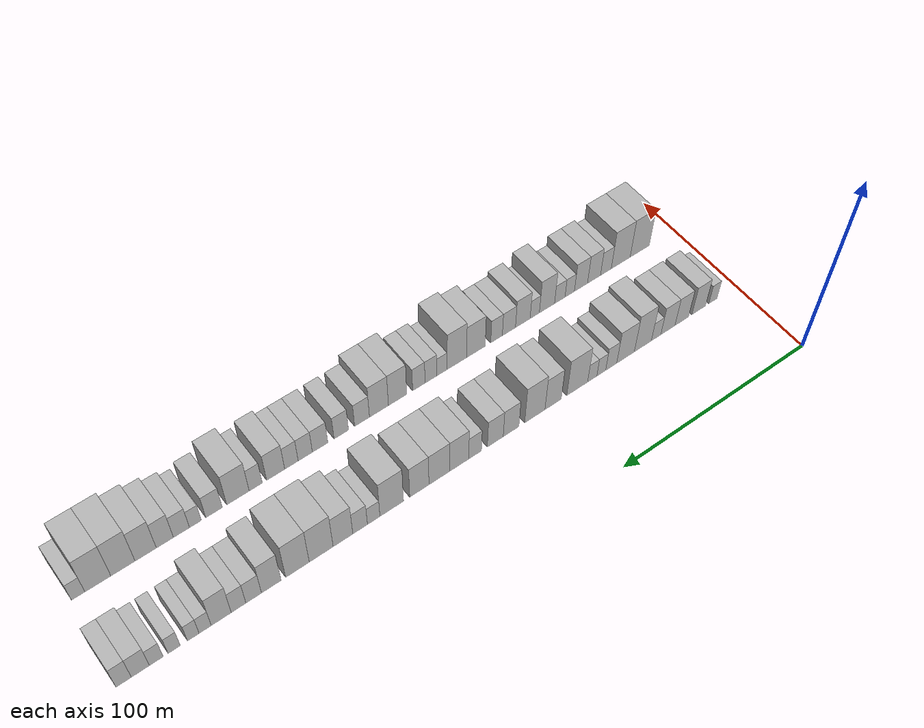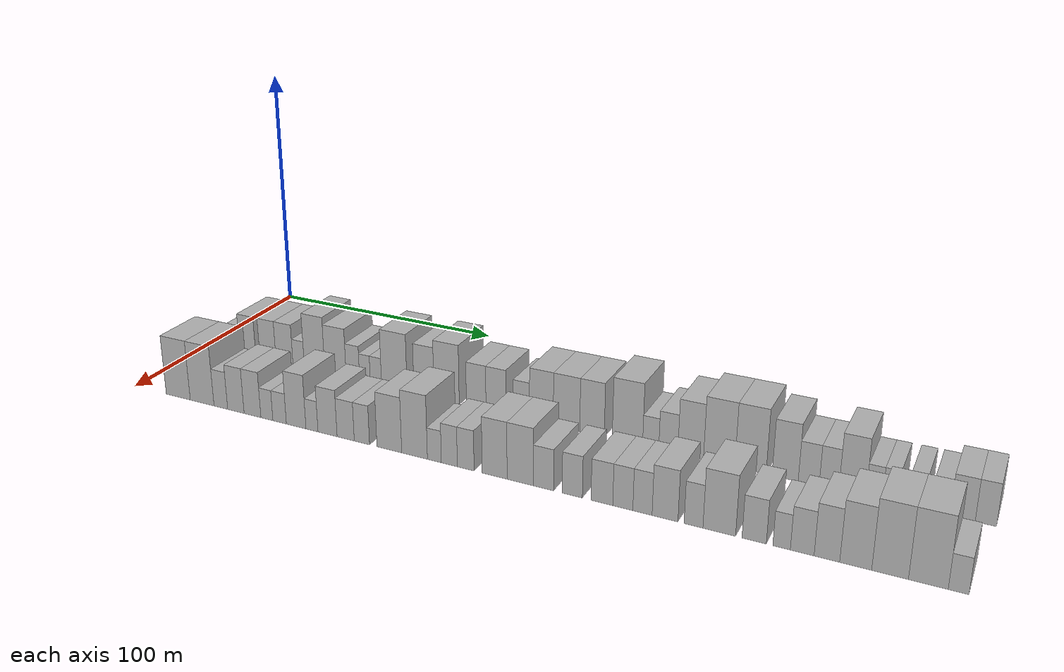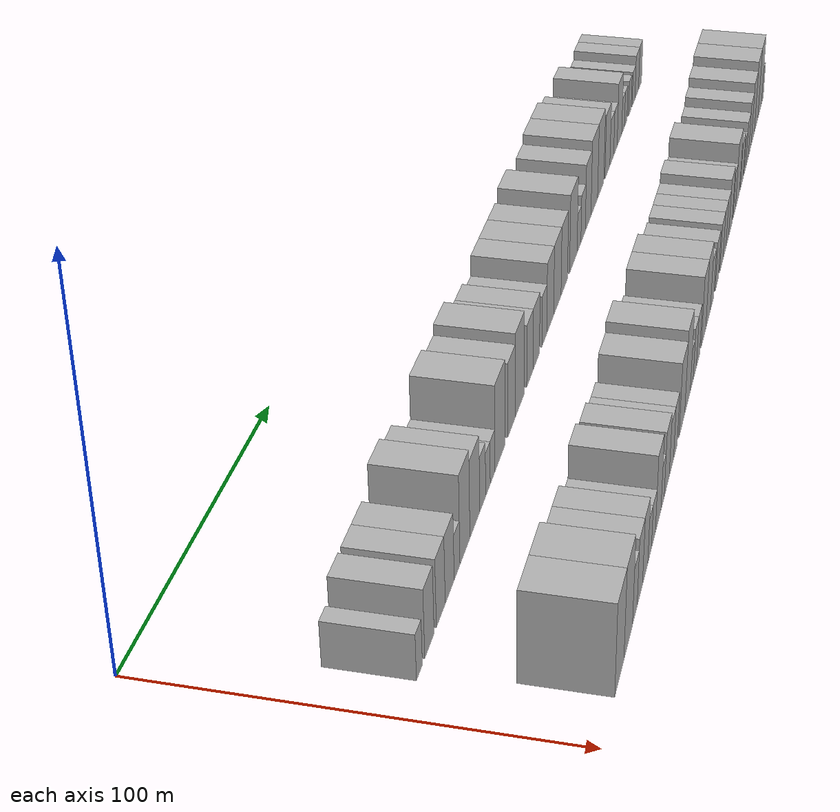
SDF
<sdf version="1.6">
 <world name="default">
  <model name="building_35">
   <static>1</static>
   <pose>50.0000 13.9240 0 0.000000 0.000000 0.000000</pose>
   <link name="link">
    <pose>0 0 6.00 0 0 0</pose>
    <collision name="collision"><geometry><box><size>20.0000 4.8613 12.0000</size></box></geometry></collision>
    <visual name="visual">
     <cast_shadows>0</cast_shadows>
     <geometry><box><size>20.0000 4.8613 12.0000</size></box></geometry>
     <material>
      <script>
       <uri>model://HANNAS_wall/materials/scripts</uri>
       <uri>model://HANNAS_wall/materials/textures</uri>
       <name>vrc/HANNAS_wall</name>
      </script>
     </material>
    </visual>
   </link>
  </model>
  <model name="building_36">
   <static>1</static>
   <pose>50.0000 22.3026 0 0.000000 0.000000 0.000000</pose>
   <link name="link">
    <pose>0 0 9.00 0 0 0</pose>
    <collision name="collision"><geometry><box><size>20.0000 7.8958 18.0000</size></box></geometry></collision>
    <visual name="visual">
     <cast_shadows>0</cast_shadows>
     <geometry><box><size>20.0000 7.8958 18.0000</size></box></geometry>
     <material>
      <script>
       <uri>model://HANNAS_wall/materials/scripts</uri>
       <uri>model://HANNAS_wall/materials/textures</uri>
       <name>vrc/HANNAS_wall</name>
      </script>
     </material>
    </visual>
   </link>
  </model>
  <model name="building_37">
   <static>1</static>
   <pose>50.0000 32.1609 0 0.000000 0.000000 0.000000</pose>
   <link name="link">
    <pose>0 0 9.00 0 0 0</pose>
    <collision name="collision"><geometry><box><size>20.0000 7.8208 18.0000</size></box></geometry></collision>
    <visual name="visual">
     <cast_shadows>0</cast_shadows>
     <geometry><box><size>20.0000 7.8208 18.0000</size></box></geometry>
     <material>
      <script>
       <uri>model://HANNAS_wall/materials/scripts</uri>
       <uri>model://HANNAS_wall/materials/textures</uri>
       <name>vrc/HANNAS_wall</name>
      </script>
     </material>
    </visual>
   </link>
  </model>
  <model name="building_38">
   <static>1</static>
   <pose>50.0000 40.1350 0 0.000000 0.000000 0.000000</pose>
   <link name="link">
    <pose>0 0 9.00 0 0 0</pose>
    <collision name="collision"><geometry><box><size>20.0000 8.1274 18.0000</size></box></geometry></collision>
    <visual name="visual">
     <cast_shadows>0</cast_shadows>
     <geometry><box><size>20.0000 8.1274 18.0000</size></box></geometry>
     <material>
      <script>
       <uri>model://HANNAS_wall/materials/scripts</uri>
       <uri>model://HANNAS_wall/materials/textures</uri>
       <name>vrc/HANNAS_wall</name>
      </script>
     </material>
    </visual>
   </link>
  </model>
  <model name="building_39">
   <static>1</static>
   <pose>50.0000 46.8901 0 0.000000 0.000000 0.000000</pose>
   <link name="link">
    <pose>0 0 6.00 0 0 0</pose>
    <collision name="collision"><geometry><box><size>20.0000 5.3828 12.0000</size></box></geometry></collision>
    <visual name="visual">
     <cast_shadows>0</cast_shadows>
     <geometry><box><size>20.0000 5.3828 12.0000</size></box></geometry>
     <material>
      <script>
       <uri>model://HANNAS_wall/materials/scripts</uri>
       <uri>model://HANNAS_wall/materials/textures</uri>
       <name>vrc/HANNAS_wall</name>
      </script>
     </material>
    </visual>
   </link>
  </model>
  <model name="building_40">
   <static>1</static>
   <pose>50.0000 54.3845 0 0.000000 0.000000 0.000000</pose>
   <link name="link">
    <pose>0 0 12.00 0 0 0</pose>
    <collision name="collision"><geometry><box><size>20.0000 9.6059 24.0000</size></box></geometry></collision>
    <visual name="visual">
     <cast_shadows>0</cast_shadows>
     <geometry><box><size>20.0000 9.6059 24.0000</size></box></geometry>
     <material>
      <script>
       <uri>model://HANNAS_wall/materials/scripts</uri>
       <uri>model://HANNAS_wall/materials/textures</uri>
       <name>vrc/HANNAS_wall</name>
      </script>
     </material>
    </visual>
   </link>
  </model>
  <model name="building_41">
   <static>1</static>
   <pose>50.0000 64.0913 0 0.000000 0.000000 0.000000</pose>
   <link name="link">
    <pose>0 0 10.50 0 0 0</pose>
    <collision name="collision"><geometry><box><size>20.0000 9.8076 21.0000</size></box></geometry></collision>
    <visual name="visual">
     <cast_shadows>0</cast_shadows>
     <geometry><box><size>20.0000 9.8076 21.0000</size></box></geometry>
     <material>
      <script>
       <uri>model://HANNAS_wall/materials/scripts</uri>
       <uri>model://HANNAS_wall/materials/textures</uri>
       <name>vrc/HANNAS_wall</name>
      </script>
     </material>
    </visual>
   </link>
  </model>
  <model name="building_42">
   <static>1</static>
   <pose>50.0000 72.0387 0 0.000000 0.000000 0.000000</pose>
   <link name="link">
    <pose>0 0 7.50 0 0 0</pose>
    <collision name="collision"><geometry><box><size>20.0000 6.0873 15.0000</size></box></geometry></collision>
    <visual name="visual">
     <cast_shadows>0</cast_shadows>
     <geometry><box><size>20.0000 6.0873 15.0000</size></box></geometry>
     <material>
      <script>
       <uri>model://HANNAS_wall/materials/scripts</uri>
       <uri>model://HANNAS_wall/materials/textures</uri>
       <name>vrc/HANNAS_wall</name>
      </script>
     </material>
    </visual>
   </link>
  </model>
  <model name="building_43">
   <static>1</static>
   <pose>50.0000 77.4882 0 0.000000 0.000000 0.000000</pose>
   <link name="link">
    <pose>0 0 6.00 0 0 0</pose>
    <collision name="collision"><geometry><box><size>20.0000 4.8118 12.0000</size></box></geometry></collision>
    <visual name="visual">
     <cast_shadows>0</cast_shadows>
     <geometry><box><size>20.0000 4.8118 12.0000</size></box></geometry>
     <material>
      <script>
       <uri>model://HANNAS_wall/materials/scripts</uri>
       <uri>model://HANNAS_wall/materials/textures</uri>
       <name>vrc/HANNAS_wall</name>
      </script>
     </material>
    </visual>
   </link>
  </model>
  <model name="building_44">
   <static>1</static>
   <pose>50.0000 82.4046 0 0.000000 0.000000 0.000000</pose>
   <link name="link">
    <pose>0 0 6.00 0 0 0</pose>
    <collision name="collision"><geometry><box><size>20.0000 5.0209 12.0000</size></box></geometry></collision>
    <visual name="visual">
     <cast_shadows>0</cast_shadows>
     <geometry><box><size>20.0000 5.0209 12.0000</size></box></geometry>
     <material>
      <script>
       <uri>model://HANNAS_wall/materials/scripts</uri>
       <uri>model://HANNAS_wall/materials/textures</uri>
       <name>vrc/HANNAS_wall</name>
      </script>
     </material>
    </visual>
   </link>
  </model>
  <model name="building_45">
   <static>1</static>
   <pose>50.0000 90.5324 0 0.000000 0.000000 0.000000</pose>
   <link name="link">
    <pose>0 0 12.00 0 0 0</pose>
    <collision name="collision"><geometry><box><size>20.0000 11.2347 24.0000</size></box></geometry></collision>
    <visual name="visual">
     <cast_shadows>0</cast_shadows>
     <geometry><box><size>20.0000 11.2347 24.0000</size></box></geometry>
     <material>
      <script>
       <uri>model://HANNAS_wall/materials/scripts</uri>
       <uri>model://HANNAS_wall/materials/textures</uri>
       <name>vrc/HANNAS_wall</name>
      </script>
     </material>
    </visual>
   </link>
  </model>
  <model name="building_46">
   <static>1</static>
   <pose>50.0000 103.4537 0 0.000000 0.000000 0.000000</pose>
   <link name="link">
    <pose>0 0 10.50 0 0 0</pose>
    <collision name="collision"><geometry><box><size>20.0000 8.6078 21.0000</size></box></geometry></collision>
    <visual name="visual">
     <cast_shadows>0</cast_shadows>
     <geometry><box><size>20.0000 8.6078 21.0000</size></box></geometry>
     <material>
      <script>
       <uri>model://HANNAS_wall/materials/scripts</uri>
       <uri>model://HANNAS_wall/materials/textures</uri>
       <name>vrc/HANNAS_wall</name>
      </script>
     </material>
    </visual>
   </link>
  </model>
  <model name="building_47">
   <static>1</static>
   <pose>50.0000 113.0710 0 0.000000 0.000000 0.000000</pose>
   <link name="link">
    <pose>0 0 12.00 0 0 0</pose>
    <collision name="collision"><geometry><box><size>20.0000 10.6269 24.0000</size></box></geometry></collision>
    <visual name="visual">
     <cast_shadows>0</cast_shadows>
     <geometry><box><size>20.0000 10.6269 24.0000</size></box></geometry>
     <material>
      <script>
       <uri>model://HANNAS_wall/materials/scripts</uri>
       <uri>model://HANNAS_wall/materials/textures</uri>
       <name>vrc/HANNAS_wall</name>
      </script>
     </material>
    </visual>
   </link>
  </model>
  <model name="building_48">
   <static>1</static>
   <pose>50.0000 125.4324 0 0.000000 0.000000 0.000000</pose>
   <link name="link">
    <pose>0 0 9.00 0 0 0</pose>
    <collision name="collision"><geometry><box><size>20.0000 8.0960 18.0000</size></box></geometry></collision>
    <visual name="visual">
     <cast_shadows>0</cast_shadows>
     <geometry><box><size>20.0000 8.0960 18.0000</size></box></geometry>
     <material>
      <script>
       <uri>model://HANNAS_wall/materials/scripts</uri>
       <uri>model://HANNAS_wall/materials/textures</uri>
       <name>vrc/HANNAS_wall</name>
      </script>
     </material>
    </visual>
   </link>
  </model>
  <model name="building_49">
   <static>1</static>
   <pose>50.0000 133.5288 0 0.000000 0.000000 0.000000</pose>
   <link name="link">
    <pose>0 0 9.00 0 0 0</pose>
    <collision name="collision"><geometry><box><size>20.0000 8.0967 18.0000</size></box></geometry></collision>
    <visual name="visual">
     <cast_shadows>0</cast_shadows>
     <geometry><box><size>20.0000 8.0967 18.0000</size></box></geometry>
     <material>
      <script>
       <uri>model://HANNAS_wall/materials/scripts</uri>
       <uri>model://HANNAS_wall/materials/textures</uri>
       <name>vrc/HANNAS_wall</name>
      </script>
     </material>
    </visual>
   </link>
  </model>
  <model name="building_50">
   <static>1</static>
   <pose>50.0000 143.8036 0 0.000000 0.000000 0.000000</pose>
   <link name="link">
    <pose>0 0 7.50 0 0 0</pose>
    <collision name="collision"><geometry><box><size>20.0000 6.4529 15.0000</size></box></geometry></collision>
    <visual name="visual">
     <cast_shadows>0</cast_shadows>
     <geometry><box><size>20.0000 6.4529 15.0000</size></box></geometry>
     <material>
      <script>
       <uri>model://HANNAS_wall/materials/scripts</uri>
       <uri>model://HANNAS_wall/materials/textures</uri>
       <name>vrc/HANNAS_wall</name>
      </script>
     </material>
    </visual>
   </link>
  </model>
  <model name="building_51">
   <static>1</static>
   <pose>50.0000 151.7196 0 0.000000 0.000000 0.000000</pose>
   <link name="link">
    <pose>0 0 10.50 0 0 0</pose>
    <collision name="collision"><geometry><box><size>20.0000 9.3789 21.0000</size></box></geometry></collision>
    <visual name="visual">
     <cast_shadows>0</cast_shadows>
     <geometry><box><size>20.0000 9.3789 21.0000</size></box></geometry>
     <material>
      <script>
       <uri>model://HANNAS_wall/materials/scripts</uri>
       <uri>model://HANNAS_wall/materials/textures</uri>
       <name>vrc/HANNAS_wall</name>
      </script>
     </material>
    </visual>
   </link>
  </model>
  <model name="building_52">
   <static>1</static>
   <pose>50.0000 161.5424 0 0.000000 0.000000 0.000000</pose>
   <link name="link">
    <pose>0 0 10.50 0 0 0</pose>
    <collision name="collision"><geometry><box><size>20.0000 10.2667 21.0000</size></box></geometry></collision>
    <visual name="visual">
     <cast_shadows>0</cast_shadows>
     <geometry><box><size>20.0000 10.2667 21.0000</size></box></geometry>
     <material>
      <script>
       <uri>model://HANNAS_wall/materials/scripts</uri>
       <uri>model://HANNAS_wall/materials/textures</uri>
       <name>vrc/HANNAS_wall</name>
      </script>
     </material>
    </visual>
   </link>
  </model>
  <model name="building_53">
   <static>1</static>
   <pose>50.0000 171.3436 0 0.000000 0.000000 0.000000</pose>
   <link name="link">
    <pose>0 0 10.50 0 0 0</pose>
    <collision name="collision"><geometry><box><size>20.0000 9.3358 21.0000</size></box></geometry></collision>
    <visual name="visual">
     <cast_shadows>0</cast_shadows>
     <geometry><box><size>20.0000 9.3358 21.0000</size></box></geometry>
     <material>
      <script>
       <uri>model://HANNAS_wall/materials/scripts</uri>
       <uri>model://HANNAS_wall/materials/textures</uri>
       <name>vrc/HANNAS_wall</name>
      </script>
     </material>
    </visual>
   </link>
  </model>
  <model name="building_54">
   <static>1</static>
   <pose>50.0000 184.6445 0 0.000000 0.000000 0.000000</pose>
   <link name="link">
    <pose>0 0 12.00 0 0 0</pose>
    <collision name="collision"><geometry><box><size>20.0000 11.2659 24.0000</size></box></geometry></collision>
    <visual name="visual">
     <cast_shadows>0</cast_shadows>
     <geometry><box><size>20.0000 11.2659 24.0000</size></box></geometry>
     <material>
      <script>
       <uri>model://HANNAS_wall/materials/scripts</uri>
       <uri>model://HANNAS_wall/materials/textures</uri>
       <name>vrc/HANNAS_wall</name>
      </script>
     </material>
    </visual>
   </link>
  </model>
  <model name="building_55">
   <static>1</static>
   <pose>50.0000 193.2278 0 0.000000 0.000000 0.000000</pose>
   <link name="link">
    <pose>0 0 6.00 0 0 0</pose>
    <collision name="collision"><geometry><box><size>20.0000 5.9009 12.0000</size></box></geometry></collision>
    <visual name="visual">
     <cast_shadows>0</cast_shadows>
     <geometry><box><size>20.0000 5.9009 12.0000</size></box></geometry>
     <material>
      <script>
       <uri>model://HANNAS_wall/materials/scripts</uri>
       <uri>model://HANNAS_wall/materials/textures</uri>
       <name>vrc/HANNAS_wall</name>
      </script>
     </material>
    </visual>
   </link>
  </model>
  <model name="building_56">
   <static>1</static>
   <pose>50.0000 199.6031 0 0.000000 0.000000 0.000000</pose>
   <link name="link">
    <pose>0 0 7.50 0 0 0</pose>
    <collision name="collision"><geometry><box><size>20.0000 6.8497 15.0000</size></box></geometry></collision>
    <visual name="visual">
     <cast_shadows>0</cast_shadows>
     <geometry><box><size>20.0000 6.8497 15.0000</size></box></geometry>
     <material>
      <script>
       <uri>model://HANNAS_wall/materials/scripts</uri>
       <uri>model://HANNAS_wall/materials/textures</uri>
       <name>vrc/HANNAS_wall</name>
      </script>
     </material>
    </visual>
   </link>
  </model>
  <model name="building_57">
   <static>1</static>
   <pose>50.0000 207.5885 0 0.000000 0.000000 0.000000</pose>
   <link name="link">
    <pose>0 0 10.50 0 0 0</pose>
    <collision name="collision"><geometry><box><size>20.0000 9.1211 21.0000</size></box></geometry></collision>
    <visual name="visual">
     <cast_shadows>0</cast_shadows>
     <geometry><box><size>20.0000 9.1211 21.0000</size></box></geometry>
     <material>
      <script>
       <uri>model://HANNAS_wall/materials/scripts</uri>
       <uri>model://HANNAS_wall/materials/textures</uri>
       <name>vrc/HANNAS_wall</name>
      </script>
     </material>
    </visual>
   </link>
  </model>
  <model name="building_58">
   <static>1</static>
   <pose>50.0000 217.6149 0 0.000000 0.000000 0.000000</pose>
   <link name="link">
    <pose>0 0 12.00 0 0 0</pose>
    <collision name="collision"><geometry><box><size>20.0000 10.9317 24.0000</size></box></geometry></collision>
    <visual name="visual">
     <cast_shadows>0</cast_shadows>
     <geometry><box><size>20.0000 10.9317 24.0000</size></box></geometry>
     <material>
      <script>
       <uri>model://HANNAS_wall/materials/scripts</uri>
       <uri>model://HANNAS_wall/materials/textures</uri>
       <name>vrc/HANNAS_wall</name>
      </script>
     </material>
    </visual>
   </link>
  </model>
  <model name="building_59">
   <static>1</static>
   <pose>50.0000 228.4080 0 0.000000 0.000000 0.000000</pose>
   <link name="link">
    <pose>0 0 12.00 0 0 0</pose>
    <collision name="collision"><geometry><box><size>20.0000 10.6546 24.0000</size></box></geometry></collision>
    <visual name="visual">
     <cast_shadows>0</cast_shadows>
     <geometry><box><size>20.0000 10.6546 24.0000</size></box></geometry>
     <material>
      <script>
       <uri>model://HANNAS_wall/materials/scripts</uri>
       <uri>model://HANNAS_wall/materials/textures</uri>
       <name>vrc/HANNAS_wall</name>
      </script>
     </material>
    </visual>
   </link>
  </model>
  <model name="building_60">
   <static>1</static>
   <pose>50.0000 240.0956 0 0.000000 0.000000 0.000000</pose>
   <link name="link">
    <pose>0 0 10.50 0 0 0</pose>
    <collision name="collision"><geometry><box><size>20.0000 8.7206 21.0000</size></box></geometry></collision>
    <visual name="visual">
     <cast_shadows>0</cast_shadows>
     <geometry><box><size>20.0000 8.7206 21.0000</size></box></geometry>
     <material>
      <script>
       <uri>model://HANNAS_wall/materials/scripts</uri>
       <uri>model://HANNAS_wall/materials/textures</uri>
       <name>vrc/HANNAS_wall</name>
      </script>
     </material>
    </visual>
   </link>
  </model>
  <model name="building_61">
   <static>1</static>
   <pose>50.0000 247.8825 0 0.000000 0.000000 0.000000</pose>
   <link name="link">
    <pose>0 0 7.50 0 0 0</pose>
    <collision name="collision"><geometry><box><size>20.0000 6.8532 15.0000</size></box></geometry></collision>
    <visual name="visual">
     <cast_shadows>0</cast_shadows>
     <geometry><box><size>20.0000 6.8532 15.0000</size></box></geometry>
     <material>
      <script>
       <uri>model://HANNAS_wall/materials/scripts</uri>
       <uri>model://HANNAS_wall/materials/textures</uri>
       <name>vrc/HANNAS_wall</name>
      </script>
     </material>
    </visual>
   </link>
  </model>
  <model name="building_62">
   <static>1</static>
   <pose>50.0000 254.4864 0 0.000000 0.000000 0.000000</pose>
   <link name="link">
    <pose>0 0 7.50 0 0 0</pose>
    <collision name="collision"><geometry><box><size>20.0000 6.3546 15.0000</size></box></geometry></collision>
    <visual name="visual">
     <cast_shadows>0</cast_shadows>
     <geometry><box><size>20.0000 6.3546 15.0000</size></box></geometry>
     <material>
      <script>
       <uri>model://HANNAS_wall/materials/scripts</uri>
       <uri>model://HANNAS_wall/materials/textures</uri>
       <name>vrc/HANNAS_wall</name>
      </script>
     </material>
    </visual>
   </link>
  </model>
  <model name="building_63">
   <static>1</static>
   <pose>50.0000 261.9787 0 0.000000 0.000000 0.000000</pose>
   <link name="link">
    <pose>0 0 10.50 0 0 0</pose>
    <collision name="collision"><geometry><box><size>20.0000 8.6299 21.0000</size></box></geometry></collision>
    <visual name="visual">
     <cast_shadows>0</cast_shadows>
     <geometry><box><size>20.0000 8.6299 21.0000</size></box></geometry>
     <material>
      <script>
       <uri>model://HANNAS_wall/materials/scripts</uri>
       <uri>model://HANNAS_wall/materials/textures</uri>
       <name>vrc/HANNAS_wall</name>
      </script>
     </material>
    </visual>
   </link>
  </model>
  <model name="building_64">
   <static>1</static>
   <pose>50.0000 268.8874 0 0.000000 0.000000 0.000000</pose>
   <link name="link">
    <pose>0 0 6.00 0 0 0</pose>
    <collision name="collision"><geometry><box><size>20.0000 5.1875 12.0000</size></box></geometry></collision>
    <visual name="visual">
     <cast_shadows>0</cast_shadows>
     <geometry><box><size>20.0000 5.1875 12.0000</size></box></geometry>
     <material>
      <script>
       <uri>model://HANNAS_wall/materials/scripts</uri>
       <uri>model://HANNAS_wall/materials/textures</uri>
       <name>vrc/HANNAS_wall</name>
      </script>
     </material>
    </visual>
   </link>
  </model>
  <model name="building_65">
   <static>1</static>
   <pose>50.0000 273.9384 0 0.000000 0.000000 0.000000</pose>
   <link name="link">
    <pose>0 0 6.00 0 0 0</pose>
    <collision name="collision"><geometry><box><size>20.0000 4.9145 12.0000</size></box></geometry></collision>
    <visual name="visual">
     <cast_shadows>0</cast_shadows>
     <geometry><box><size>20.0000 4.9145 12.0000</size></box></geometry>
     <material>
      <script>
       <uri>model://HANNAS_wall/materials/scripts</uri>
       <uri>model://HANNAS_wall/materials/textures</uri>
       <name>vrc/HANNAS_wall</name>
      </script>
     </material>
    </visual>
   </link>
  </model>
  <model name="building_66">
   <static>1</static>
   <pose>50.0000 281.9680 0 0.000000 0.000000 0.000000</pose>
   <link name="link">
    <pose>0 0 6.00 0 0 0</pose>
    <collision name="collision"><geometry><box><size>20.0000 5.1447 12.0000</size></box></geometry></collision>
    <visual name="visual">
     <cast_shadows>0</cast_shadows>
     <geometry><box><size>20.0000 5.1447 12.0000</size></box></geometry>
     <material>
      <script>
       <uri>model://HANNAS_wall/materials/scripts</uri>
       <uri>model://HANNAS_wall/materials/textures</uri>
       <name>vrc/HANNAS_wall</name>
      </script>
     </material>
    </visual>
   </link>
  </model>
  <model name="building_67">
   <static>1</static>
   <pose>50.0000 289.4012 0 0.000000 0.000000 0.000000</pose>
   <link name="link">
    <pose>0 0 6.00 0 0 0</pose>
    <collision name="collision"><geometry><box><size>20.0000 5.7215 12.0000</size></box></geometry></collision>
    <visual name="visual">
     <cast_shadows>0</cast_shadows>
     <geometry><box><size>20.0000 5.7215 12.0000</size></box></geometry>
     <material>
      <script>
       <uri>model://HANNAS_wall/materials/scripts</uri>
       <uri>model://HANNAS_wall/materials/textures</uri>
       <name>vrc/HANNAS_wall</name>
      </script>
     </material>
    </visual>
   </link>
  </model>
  <model name="building_68">
   <static>1</static>
   <pose>50.0000 295.9779 0 0.000000 0.000000 0.000000</pose>
   <link name="link">
    <pose>0 0 7.50 0 0 0</pose>
    <collision name="collision"><geometry><box><size>20.0000 7.4320 15.0000</size></box></geometry></collision>
    <visual name="visual">
     <cast_shadows>0</cast_shadows>
     <geometry><box><size>20.0000 7.4320 15.0000</size></box></geometry>
     <material>
      <script>
       <uri>model://HANNAS_wall/materials/scripts</uri>
       <uri>model://HANNAS_wall/materials/textures</uri>
       <name>vrc/HANNAS_wall</name>
      </script>
     </material>
    </visual>
   </link>
  </model>
  <model name="building_69">
   <static>1</static>
   <pose>50.0000 302.8215 0 0.000000 0.000000 0.000000</pose>
   <link name="link">
    <pose>0 0 7.50 0 0 0</pose>
    <collision name="collision"><geometry><box><size>20.0000 6.2551 15.0000</size></box></geometry></collision>
    <visual name="visual">
     <cast_shadows>0</cast_shadows>
     <geometry><box><size>20.0000 6.2551 15.0000</size></box></geometry>
     <material>
      <script>
       <uri>model://HANNAS_wall/materials/scripts</uri>
       <uri>model://HANNAS_wall/materials/textures</uri>
       <name>vrc/HANNAS_wall</name>
      </script>
     </material>
    </visual>
   </link>
  </model>
  <model name="building_106">
   <static>1</static>
   <pose>90.0000 20.6751 0 0.000000 0.000000 0.000000</pose>
   <link name="link">
    <pose>0 0 12.00 0 0 0</pose>
    <collision name="collision"><geometry><box><size>20.0000 11.3419 24.0000</size></box></geometry></collision>
    <visual name="visual">
     <cast_shadows>0</cast_shadows>
     <geometry><box><size>20.0000 11.3419 24.0000</size></box></geometry>
     <material>
      <script>
       <uri>model://HANNAS_wall/materials/scripts</uri>
       <uri>model://HANNAS_wall/materials/textures</uri>
       <name>vrc/HANNAS_wall</name>
      </script>
     </material>
    </visual>
   </link>
  </model>
  <model name="building_107">
   <static>1</static>
   <pose>90.0000 31.8686 0 0.000000 0.000000 0.000000</pose>
   <link name="link">
    <pose>0 0 12.00 0 0 0</pose>
    <collision name="collision"><geometry><box><size>20.0000 11.0450 24.0000</size></box></geometry></collision>
    <visual name="visual">
     <cast_shadows>0</cast_shadows>
     <geometry><box><size>20.0000 11.0450 24.0000</size></box></geometry>
     <material>
      <script>
       <uri>model://HANNAS_wall/materials/scripts</uri>
       <uri>model://HANNAS_wall/materials/textures</uri>
       <name>vrc/HANNAS_wall</name>
      </script>
     </material>
    </visual>
   </link>
  </model>
  <model name="building_108">
   <static>1</static>
   <pose>90.0000 40.5115 0 0.000000 0.000000 0.000000</pose>
   <link name="link">
    <pose>0 0 7.50 0 0 0</pose>
    <collision name="collision"><geometry><box><size>20.0000 6.2408 15.0000</size></box></geometry></collision>
    <visual name="visual">
     <cast_shadows>0</cast_shadows>
     <geometry><box><size>20.0000 6.2408 15.0000</size></box></geometry>
     <material>
      <script>
       <uri>model://HANNAS_wall/materials/scripts</uri>
       <uri>model://HANNAS_wall/materials/textures</uri>
       <name>vrc/HANNAS_wall</name>
      </script>
     </material>
    </visual>
   </link>
  </model>
  <model name="building_109">
   <static>1</static>
   <pose>90.0000 47.3466 0 0.000000 0.000000 0.000000</pose>
   <link name="link">
    <pose>0 0 9.00 0 0 0</pose>
    <collision name="collision"><geometry><box><size>20.0000 7.4295 18.0000</size></box></geometry></collision>
    <visual name="visual">
     <cast_shadows>0</cast_shadows>
     <geometry><box><size>20.0000 7.4295 18.0000</size></box></geometry>
     <material>
      <script>
       <uri>model://HANNAS_wall/materials/scripts</uri>
       <uri>model://HANNAS_wall/materials/textures</uri>
       <name>vrc/HANNAS_wall</name>
      </script>
     </material>
    </visual>
   </link>
  </model>
  <model name="building_110">
   <static>1</static>
   <pose>90.0000 54.8075 0 0.000000 0.000000 0.000000</pose>
   <link name="link">
    <pose>0 0 9.00 0 0 0</pose>
    <collision name="collision"><geometry><box><size>20.0000 7.4922 18.0000</size></box></geometry></collision>
    <visual name="visual">
     <cast_shadows>0</cast_shadows>
     <geometry><box><size>20.0000 7.4922 18.0000</size></box></geometry>
     <material>
      <script>
       <uri>model://HANNAS_wall/materials/scripts</uri>
       <uri>model://HANNAS_wall/materials/textures</uri>
       <name>vrc/HANNAS_wall</name>
      </script>
     </material>
    </visual>
   </link>
  </model>
  <model name="building_111">
   <static>1</static>
   <pose>90.0000 61.1975 0 0.000000 0.000000 0.000000</pose>
   <link name="link">
    <pose>0 0 6.00 0 0 0</pose>
    <collision name="collision"><geometry><box><size>20.0000 5.2878 12.0000</size></box></geometry></collision>
    <visual name="visual">
     <cast_shadows>0</cast_shadows>
     <geometry><box><size>20.0000 5.2878 12.0000</size></box></geometry>
     <material>
      <script>
       <uri>model://HANNAS_wall/materials/scripts</uri>
       <uri>model://HANNAS_wall/materials/textures</uri>
       <name>vrc/HANNAS_wall</name>
      </script>
     </material>
    </visual>
   </link>
  </model>
  <model name="building_112">
   <static>1</static>
   <pose>90.0000 66.7858 0 0.000000 0.000000 0.000000</pose>
   <link name="link">
    <pose>0 0 6.00 0 0 0</pose>
    <collision name="collision"><geometry><box><size>20.0000 5.8889 12.0000</size></box></geometry></collision>
    <visual name="visual">
     <cast_shadows>0</cast_shadows>
     <geometry><box><size>20.0000 5.8889 12.0000</size></box></geometry>
     <material>
      <script>
       <uri>model://HANNAS_wall/materials/scripts</uri>
       <uri>model://HANNAS_wall/materials/textures</uri>
       <name>vrc/HANNAS_wall</name>
      </script>
     </material>
    </visual>
   </link>
  </model>
  <model name="building_113">
   <static>1</static>
   <pose>90.0000 73.9544 0 0.000000 0.000000 0.000000</pose>
   <link name="link">
    <pose>0 0 10.50 0 0 0</pose>
    <collision name="collision"><geometry><box><size>20.0000 8.4482 21.0000</size></box></geometry></collision>
    <visual name="visual">
     <cast_shadows>0</cast_shadows>
     <geometry><box><size>20.0000 8.4482 21.0000</size></box></geometry>
     <material>
      <script>
       <uri>model://HANNAS_wall/materials/scripts</uri>
       <uri>model://HANNAS_wall/materials/textures</uri>
       <name>vrc/HANNAS_wall</name>
      </script>
     </material>
    </visual>
   </link>
  </model>
  <model name="building_114">
   <static>1</static>
   <pose>90.0000 80.7326 0 0.000000 0.000000 0.000000</pose>
   <link name="link">
    <pose>0 0 6.00 0 0 0</pose>
    <collision name="collision"><geometry><box><size>20.0000 5.1081 12.0000</size></box></geometry></collision>
    <visual name="visual">
     <cast_shadows>0</cast_shadows>
     <geometry><box><size>20.0000 5.1081 12.0000</size></box></geometry>
     <material>
      <script>
       <uri>model://HANNAS_wall/materials/scripts</uri>
       <uri>model://HANNAS_wall/materials/textures</uri>
       <name>vrc/HANNAS_wall</name>
      </script>
     </material>
    </visual>
   </link>
  </model>
  <model name="building_115">
   <static>1</static>
   <pose>90.0000 87.3002 0 0.000000 0.000000 0.000000</pose>
   <link name="link">
    <pose>0 0 9.00 0 0 0</pose>
    <collision name="collision"><geometry><box><size>20.0000 8.0271 18.0000</size></box></geometry></collision>
    <visual name="visual">
     <cast_shadows>0</cast_shadows>
     <geometry><box><size>20.0000 8.0271 18.0000</size></box></geometry>
     <material>
      <script>
       <uri>model://HANNAS_wall/materials/scripts</uri>
       <uri>model://HANNAS_wall/materials/textures</uri>
       <name>vrc/HANNAS_wall</name>
      </script>
     </material>
    </visual>
   </link>
  </model>
  <model name="building_116">
   <static>1</static>
   <pose>90.0000 94.8762 0 0.000000 0.000000 0.000000</pose>
   <link name="link">
    <pose>0 0 7.50 0 0 0</pose>
    <collision name="collision"><geometry><box><size>20.0000 7.1251 15.0000</size></box></geometry></collision>
    <visual name="visual">
     <cast_shadows>0</cast_shadows>
     <geometry><box><size>20.0000 7.1251 15.0000</size></box></geometry>
     <material>
      <script>
       <uri>model://HANNAS_wall/materials/scripts</uri>
       <uri>model://HANNAS_wall/materials/textures</uri>
       <name>vrc/HANNAS_wall</name>
      </script>
     </material>
    </visual>
   </link>
  </model>
  <model name="building_117">
   <static>1</static>
   <pose>90.0000 101.5626 0 0.000000 0.000000 0.000000</pose>
   <link name="link">
    <pose>0 0 7.50 0 0 0</pose>
    <collision name="collision"><geometry><box><size>20.0000 6.2476 15.0000</size></box></geometry></collision>
    <visual name="visual">
     <cast_shadows>0</cast_shadows>
     <geometry><box><size>20.0000 6.2476 15.0000</size></box></geometry>
     <material>
      <script>
       <uri>model://HANNAS_wall/materials/scripts</uri>
       <uri>model://HANNAS_wall/materials/textures</uri>
       <name>vrc/HANNAS_wall</name>
      </script>
     </material>
    </visual>
   </link>
  </model>
  <model name="building_118">
   <static>1</static>
   <pose>90.0000 112.6450 0 0.000000 0.000000 0.000000</pose>
   <link name="link">
    <pose>0 0 10.50 0 0 0</pose>
    <collision name="collision"><geometry><box><size>20.0000 9.9173 21.0000</size></box></geometry></collision>
    <visual name="visual">
     <cast_shadows>0</cast_shadows>
     <geometry><box><size>20.0000 9.9173 21.0000</size></box></geometry>
     <material>
      <script>
       <uri>model://HANNAS_wall/materials/scripts</uri>
       <uri>model://HANNAS_wall/materials/textures</uri>
       <name>vrc/HANNAS_wall</name>
      </script>
     </material>
    </visual>
   </link>
  </model>
  <model name="building_119">
   <static>1</static>
   <pose>90.0000 122.6530 0 0.000000 0.000000 0.000000</pose>
   <link name="link">
    <pose>0 0 12.00 0 0 0</pose>
    <collision name="collision"><geometry><box><size>20.0000 10.0987 24.0000</size></box></geometry></collision>
    <visual name="visual">
     <cast_shadows>0</cast_shadows>
     <geometry><box><size>20.0000 10.0987 24.0000</size></box></geometry>
     <material>
      <script>
       <uri>model://HANNAS_wall/materials/scripts</uri>
       <uri>model://HANNAS_wall/materials/textures</uri>
       <name>vrc/HANNAS_wall</name>
      </script>
     </material>
    </visual>
   </link>
  </model>
  <model name="building_120">
   <static>1</static>
   <pose>90.0000 130.4027 0 0.000000 0.000000 0.000000</pose>
   <link name="link">
    <pose>0 0 6.00 0 0 0</pose>
    <collision name="collision"><geometry><box><size>20.0000 5.4007 12.0000</size></box></geometry></collision>
    <visual name="visual">
     <cast_shadows>0</cast_shadows>
     <geometry><box><size>20.0000 5.4007 12.0000</size></box></geometry>
     <material>
      <script>
       <uri>model://HANNAS_wall/materials/scripts</uri>
       <uri>model://HANNAS_wall/materials/textures</uri>
       <name>vrc/HANNAS_wall</name>
      </script>
     </material>
    </visual>
   </link>
  </model>
  <model name="building_121">
   <static>1</static>
   <pose>90.0000 136.1550 0 0.000000 0.000000 0.000000</pose>
   <link name="link">
    <pose>0 0 7.50 0 0 0</pose>
    <collision name="collision"><geometry><box><size>20.0000 6.1040 15.0000</size></box></geometry></collision>
    <visual name="visual">
     <cast_shadows>0</cast_shadows>
     <geometry><box><size>20.0000 6.1040 15.0000</size></box></geometry>
     <material>
      <script>
       <uri>model://HANNAS_wall/materials/scripts</uri>
       <uri>model://HANNAS_wall/materials/textures</uri>
       <name>vrc/HANNAS_wall</name>
      </script>
     </material>
    </visual>
   </link>
  </model>
  <model name="building_122">
   <static>1</static>
   <pose>90.0000 142.3725 0 0.000000 0.000000 0.000000</pose>
   <link name="link">
    <pose>0 0 7.50 0 0 0</pose>
    <collision name="collision"><geometry><box><size>20.0000 6.3309 15.0000</size></box></geometry></collision>
    <visual name="visual">
     <cast_shadows>0</cast_shadows>
     <geometry><box><size>20.0000 6.3309 15.0000</size></box></geometry>
     <material>
      <script>
       <uri>model://HANNAS_wall/materials/scripts</uri>
       <uri>model://HANNAS_wall/materials/textures</uri>
       <name>vrc/HANNAS_wall</name>
      </script>
     </material>
    </visual>
   </link>
  </model>
  <model name="building_123">
   <static>1</static>
   <pose>90.0000 153.1603 0 0.000000 0.000000 0.000000</pose>
   <link name="link">
    <pose>0 0 10.50 0 0 0</pose>
    <collision name="collision"><geometry><box><size>20.0000 9.2447 21.0000</size></box></geometry></collision>
    <visual name="visual">
     <cast_shadows>0</cast_shadows>
     <geometry><box><size>20.0000 9.2447 21.0000</size></box></geometry>
     <material>
      <script>
       <uri>model://HANNAS_wall/materials/scripts</uri>
       <uri>model://HANNAS_wall/materials/textures</uri>
       <name>vrc/HANNAS_wall</name>
      </script>
     </material>
    </visual>
   </link>
  </model>
  <model name="building_124">
   <static>1</static>
   <pose>90.0000 162.5142 0 0.000000 0.000000 0.000000</pose>
   <link name="link">
    <pose>0 0 10.50 0 0 0</pose>
    <collision name="collision"><geometry><box><size>20.0000 9.4630 21.0000</size></box></geometry></collision>
    <visual name="visual">
     <cast_shadows>0</cast_shadows>
     <geometry><box><size>20.0000 9.4630 21.0000</size></box></geometry>
     <material>
      <script>
       <uri>model://HANNAS_wall/materials/scripts</uri>
       <uri>model://HANNAS_wall/materials/textures</uri>
       <name>vrc/HANNAS_wall</name>
      </script>
     </material>
    </visual>
   </link>
  </model>
  <model name="building_125">
   <static>1</static>
   <pose>90.0000 170.9198 0 0.000000 0.000000 0.000000</pose>
   <link name="link">
    <pose>0 0 7.50 0 0 0</pose>
    <collision name="collision"><geometry><box><size>20.0000 7.3483 15.0000</size></box></geometry></collision>
    <visual name="visual">
     <cast_shadows>0</cast_shadows>
     <geometry><box><size>20.0000 7.3483 15.0000</size></box></geometry>
     <material>
      <script>
       <uri>model://HANNAS_wall/materials/scripts</uri>
       <uri>model://HANNAS_wall/materials/textures</uri>
       <name>vrc/HANNAS_wall</name>
      </script>
     </material>
    </visual>
   </link>
  </model>
  <model name="building_126">
   <static>1</static>
   <pose>90.0000 181.1269 0 0.000000 0.000000 0.000000</pose>
   <link name="link">
    <pose>0 0 7.50 0 0 0</pose>
    <collision name="collision"><geometry><box><size>20.0000 7.0660 15.0000</size></box></geometry></collision>
    <visual name="visual">
     <cast_shadows>0</cast_shadows>
     <geometry><box><size>20.0000 7.0660 15.0000</size></box></geometry>
     <material>
      <script>
       <uri>model://HANNAS_wall/materials/scripts</uri>
       <uri>model://HANNAS_wall/materials/textures</uri>
       <name>vrc/HANNAS_wall</name>
      </script>
     </material>
    </visual>
   </link>
  </model>
  <model name="building_127">
   <static>1</static>
   <pose>90.0000 191.3803 0 0.000000 0.000000 0.000000</pose>
   <link name="link">
    <pose>0 0 7.50 0 0 0</pose>
    <collision name="collision"><geometry><box><size>20.0000 7.4409 15.0000</size></box></geometry></collision>
    <visual name="visual">
     <cast_shadows>0</cast_shadows>
     <geometry><box><size>20.0000 7.4409 15.0000</size></box></geometry>
     <material>
      <script>
       <uri>model://HANNAS_wall/materials/scripts</uri>
       <uri>model://HANNAS_wall/materials/textures</uri>
       <name>vrc/HANNAS_wall</name>
      </script>
     </material>
    </visual>
   </link>
  </model>
  <model name="building_128">
   <static>1</static>
   <pose>90.0000 198.4881 0 0.000000 0.000000 0.000000</pose>
   <link name="link">
    <pose>0 0 7.50 0 0 0</pose>
    <collision name="collision"><geometry><box><size>20.0000 6.7748 15.0000</size></box></geometry></collision>
    <visual name="visual">
     <cast_shadows>0</cast_shadows>
     <geometry><box><size>20.0000 6.7748 15.0000</size></box></geometry>
     <material>
      <script>
       <uri>model://HANNAS_wall/materials/scripts</uri>
       <uri>model://HANNAS_wall/materials/textures</uri>
       <name>vrc/HANNAS_wall</name>
      </script>
     </material>
    </visual>
   </link>
  </model>
  <model name="building_129">
   <static>1</static>
   <pose>90.0000 205.0804 0 0.000000 0.000000 0.000000</pose>
   <link name="link">
    <pose>0 0 7.50 0 0 0</pose>
    <collision name="collision"><geometry><box><size>20.0000 6.4097 15.0000</size></box></geometry></collision>
    <visual name="visual">
     <cast_shadows>0</cast_shadows>
     <geometry><box><size>20.0000 6.4097 15.0000</size></box></geometry>
     <material>
      <script>
       <uri>model://HANNAS_wall/materials/scripts</uri>
       <uri>model://HANNAS_wall/materials/textures</uri>
       <name>vrc/HANNAS_wall</name>
      </script>
     </material>
    </visual>
   </link>
  </model>
  <model name="building_130">
   <static>1</static>
   <pose>90.0000 212.5224 0 0.000000 0.000000 0.000000</pose>
   <link name="link">
    <pose>0 0 9.00 0 0 0</pose>
    <collision name="collision"><geometry><box><size>20.0000 8.4744 18.0000</size></box></geometry></collision>
    <visual name="visual">
     <cast_shadows>0</cast_shadows>
     <geometry><box><size>20.0000 8.4744 18.0000</size></box></geometry>
     <material>
      <script>
       <uri>model://HANNAS_wall/materials/scripts</uri>
       <uri>model://HANNAS_wall/materials/textures</uri>
       <name>vrc/HANNAS_wall</name>
      </script>
     </material>
    </visual>
   </link>
  </model>
  <model name="building_131">
   <static>1</static>
   <pose>90.0000 221.7849 0 0.000000 0.000000 0.000000</pose>
   <link name="link">
    <pose>0 0 7.50 0 0 0</pose>
    <collision name="collision"><geometry><box><size>20.0000 6.0505 15.0000</size></box></geometry></collision>
    <visual name="visual">
     <cast_shadows>0</cast_shadows>
     <geometry><box><size>20.0000 6.0505 15.0000</size></box></geometry>
     <material>
      <script>
       <uri>model://HANNAS_wall/materials/scripts</uri>
       <uri>model://HANNAS_wall/materials/textures</uri>
       <name>vrc/HANNAS_wall</name>
      </script>
     </material>
    </visual>
   </link>
  </model>
  <model name="building_132">
   <static>1</static>
   <pose>90.0000 229.9704 0 0.000000 0.000000 0.000000</pose>
   <link name="link">
    <pose>0 0 10.50 0 0 0</pose>
    <collision name="collision"><geometry><box><size>20.0000 10.3206 21.0000</size></box></geometry></collision>
    <visual name="visual">
     <cast_shadows>0</cast_shadows>
     <geometry><box><size>20.0000 10.3206 21.0000</size></box></geometry>
     <material>
      <script>
       <uri>model://HANNAS_wall/materials/scripts</uri>
       <uri>model://HANNAS_wall/materials/textures</uri>
       <name>vrc/HANNAS_wall</name>
      </script>
     </material>
    </visual>
   </link>
  </model>
  <model name="building_133">
   <static>1</static>
   <pose>90.0000 240.8750 0 0.000000 0.000000 0.000000</pose>
   <link name="link">
    <pose>0 0 7.50 0 0 0</pose>
    <collision name="collision"><geometry><box><size>20.0000 7.4887 15.0000</size></box></geometry></collision>
    <visual name="visual">
     <cast_shadows>0</cast_shadows>
     <geometry><box><size>20.0000 7.4887 15.0000</size></box></geometry>
     <material>
      <script>
       <uri>model://HANNAS_wall/materials/scripts</uri>
       <uri>model://HANNAS_wall/materials/textures</uri>
       <name>vrc/HANNAS_wall</name>
      </script>
     </material>
    </visual>
   </link>
  </model>
  <model name="building_134">
   <static>1</static>
   <pose>90.0000 249.2578 0 0.000000 0.000000 0.000000</pose>
   <link name="link">
    <pose>0 0 6.00 0 0 0</pose>
    <collision name="collision"><geometry><box><size>20.0000 5.2769 12.0000</size></box></geometry></collision>
    <visual name="visual">
     <cast_shadows>0</cast_shadows>
     <geometry><box><size>20.0000 5.2769 12.0000</size></box></geometry>
     <material>
      <script>
       <uri>model://HANNAS_wall/materials/scripts</uri>
       <uri>model://HANNAS_wall/materials/textures</uri>
       <name>vrc/HANNAS_wall</name>
      </script>
     </material>
    </visual>
   </link>
  </model>
  <model name="building_135">
   <static>1</static>
   <pose>90.0000 255.4496 0 0.000000 0.000000 0.000000</pose>
   <link name="link">
    <pose>0 0 7.50 0 0 0</pose>
    <collision name="collision"><geometry><box><size>20.0000 7.1066 15.0000</size></box></geometry></collision>
    <visual name="visual">
     <cast_shadows>0</cast_shadows>
     <geometry><box><size>20.0000 7.1066 15.0000</size></box></geometry>
     <material>
      <script>
       <uri>model://HANNAS_wall/materials/scripts</uri>
       <uri>model://HANNAS_wall/materials/textures</uri>
       <name>vrc/HANNAS_wall</name>
      </script>
     </material>
    </visual>
   </link>
  </model>
  <model name="building_136">
   <static>1</static>
   <pose>90.0000 262.7637 0 0.000000 0.000000 0.000000</pose>
   <link name="link">
    <pose>0 0 9.00 0 0 0</pose>
    <collision name="collision"><geometry><box><size>20.0000 7.5217 18.0000</size></box></geometry></collision>
    <visual name="visual">
     <cast_shadows>0</cast_shadows>
     <geometry><box><size>20.0000 7.5217 18.0000</size></box></geometry>
     <material>
      <script>
       <uri>model://HANNAS_wall/materials/scripts</uri>
       <uri>model://HANNAS_wall/materials/textures</uri>
       <name>vrc/HANNAS_wall</name>
      </script>
     </material>
    </visual>
   </link>
  </model>
  <model name="building_137">
   <static>1</static>
   <pose>90.0000 271.1346 0 0.000000 0.000000 0.000000</pose>
   <link name="link">
    <pose>0 0 10.50 0 0 0</pose>
    <collision name="collision"><geometry><box><size>20.0000 9.2202 21.0000</size></box></geometry></collision>
    <visual name="visual">
     <cast_shadows>0</cast_shadows>
     <geometry><box><size>20.0000 9.2202 21.0000</size></box></geometry>
     <material>
      <script>
       <uri>model://HANNAS_wall/materials/scripts</uri>
       <uri>model://HANNAS_wall/materials/textures</uri>
       <name>vrc/HANNAS_wall</name>
      </script>
     </material>
    </visual>
   </link>
  </model>
  <model name="building_138">
   <static>1</static>
   <pose>90.0000 280.9348 0 0.000000 0.000000 0.000000</pose>
   <link name="link">
    <pose>0 0 12.00 0 0 0</pose>
    <collision name="collision"><geometry><box><size>20.0000 10.3802 24.0000</size></box></geometry></collision>
    <visual name="visual">
     <cast_shadows>0</cast_shadows>
     <geometry><box><size>20.0000 10.3802 24.0000</size></box></geometry>
     <material>
      <script>
       <uri>model://HANNAS_wall/materials/scripts</uri>
       <uri>model://HANNAS_wall/materials/textures</uri>
       <name>vrc/HANNAS_wall</name>
      </script>
     </material>
    </visual>
   </link>
  </model>
  <model name="building_139">
   <static>1</static>
   <pose>90.0000 291.5946 0 0.000000 0.000000 0.000000</pose>
   <link name="link">
    <pose>0 0 12.00 0 0 0</pose>
    <collision name="collision"><geometry><box><size>20.0000 10.9393 24.0000</size></box></geometry></collision>
    <visual name="visual">
     <cast_shadows>0</cast_shadows>
     <geometry><box><size>20.0000 10.9393 24.0000</size></box></geometry>
     <material>
      <script>
       <uri>model://HANNAS_wall/materials/scripts</uri>
       <uri>model://HANNAS_wall/materials/textures</uri>
       <name>vrc/HANNAS_wall</name>
      </script>
     </material>
    </visual>
   </link>
  </model>
  <model name="building_140">
   <static>1</static>
   <pose>90.0000 299.8835 0 0.000000 0.000000 0.000000</pose>
   <link name="link">
    <pose>0 0 6.00 0 0 0</pose>
    <collision name="collision"><geometry><box><size>20.0000 5.6386 12.0000</size></box></geometry></collision>
    <visual name="visual">
     <cast_shadows>0</cast_shadows>
     <geometry><box><size>20.0000 5.6386 12.0000</size></box></geometry>
     <material>
      <script>
       <uri>model://HANNAS_wall/materials/scripts</uri>
       <uri>model://HANNAS_wall/materials/textures</uri>
       <name>vrc/HANNAS_wall</name>
      </script>
     </material>
    </visual>
   </link>
  </model>
 </world>
</sdf>
